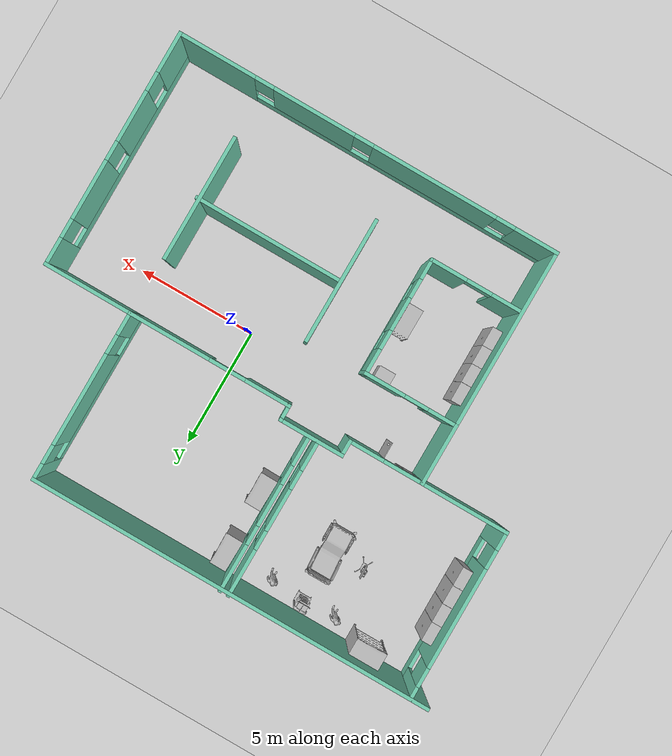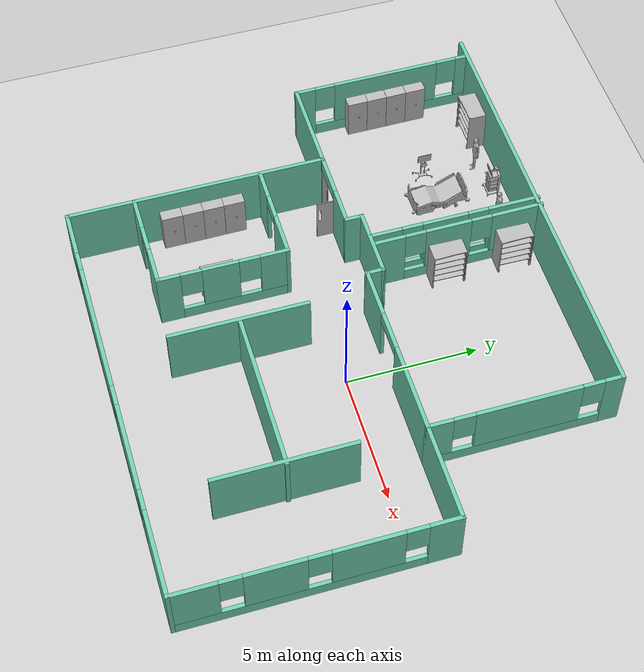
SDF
<sdf version="1.6">
 <world name="default">
  <model name="ground_plane">
   <static>1</static>
   <link name="link">
    <collision name="collision">
     <geometry><plane><normal>0 0 1</normal><size>100 100</size></plane></geometry>
     <surface><friction><ode><mu>100</mu><mu2>50</mu2></ode></friction></surface>
    </collision>
    <visual name="visual">
     <cast_shadows>0</cast_shadows>
     <geometry><plane><normal>0 0 1</normal><size>100 100</size></plane></geometry>
     <material>
      <script><uri>file://media/materials/scripts/gazebo.material</uri><name>Gazebo/Grey</name></script>
     </material>
    </visual>
   </link>
  </model>
  <model name="OperationRooms">
   <pose>-2.55409 0.269218 0 0 -0 0</pose>
   <link name="Wall_0">
    <collision name="Wall_0_Collision">
     <geometry><box><size>17 0.15 2.5</size></box></geometry>
     <pose>0 0 1.25 0 -0 0</pose>
    </collision>
    <visual name="Wall_0_Visual">
     <pose>0 0 1.25 0 -0 0</pose>
     <geometry><box><size>17 0.15 2.5</size></box></geometry>
     <material>
      <script><uri>file://media/materials/scripts/gazebo.material</uri><name>Gazebo/Grey</name></script>
      <ambient>0.435294 0.796078 0.67451 1</ambient>
     </material>
     <meta><layer>0</layer></meta>
    </visual>
    <pose>-1.8 8.44293 0 0 -0 0</pose>
   </link>
   <link name="Wall_1">
    <pose>6.625 4.89293 0 0 0 -1.5708</pose>
    <visual name="Wall_1_Visual_0">
     <pose>-3.25301 0 1.25 0 -0 0</pose>
     <geometry><box><size>0.743979 0.15 2.5</size></box></geometry>
     <material>
      <script><uri>file://media/materials/scripts/gazebo.material</uri><name>Gazebo/Grey</name></script>
      <ambient>0.435294 0.796078 0.67451 1</ambient>
     </material>
     <meta><layer>0</layer></meta>
    </visual>
    <collision name="Wall_1_Collision_0">
     <geometry><box><size>0.743979 0.15 2.5</size></box></geometry>
     <pose>-3.25301 0 1.25 0 -0 0</pose>
    </collision>
    <visual name="Wall_1_Visual_1">
     <pose>0.371989 0 0.25 0 -0 0</pose>
     <geometry><box><size>6.50602 0.15 0.5</size></box></geometry>
     <material>
      <script><uri>file://media/materials/scripts/gazebo.material</uri><name>Gazebo/Grey</name></script>
      <ambient>0.435294 0.796078 0.67451 1</ambient>
     </material>
     <meta><layer>0</layer></meta>
    </visual>
    <collision name="Wall_1_Collision_1">
     <geometry><box><size>6.50602 0.15 0.5</size></box></geometry>
     <pose>0.371989 0 0.25 0 -0 0</pose>
    </collision>
    <visual name="Wall_1_Visual_2">
     <pose>-0.131861 0 1.5 0 -0 0</pose>
     <geometry><box><size>3.89832 0.15 2</size></box></geometry>
     <material>
      <script><uri>file://media/materials/scripts/gazebo.material</uri><name>Gazebo/Grey</name></script>
      <ambient>0.435294 0.796078 0.67451 1</ambient>
     </material>
     <meta><layer>0</layer></meta>
    </visual>
    <collision name="Wall_1_Collision_2">
     <geometry><box><size>3.89832 0.15 2</size></box></geometry>
     <pose>-0.131861 0 1.5 0 -0 0</pose>
    </collision>
    <visual name="Wall_1_Visual_3">
     <pose>3.12115 0 1.5 0 -0 0</pose>
     <geometry><box><size>1.0077 0.15 2</size></box></geometry>
     <material>
      <script><uri>file://media/materials/scripts/gazebo.material</uri><name>Gazebo/Grey</name></script>
      <ambient>0.435294 0.796078 0.67451 1</ambient>
     </material>
     <meta><layer>0</layer></meta>
    </visual>
    <collision name="Wall_1_Collision_3">
     <geometry><box><size>1.0077 0.15 2</size></box></geometry>
     <pose>3.12115 0 1.5 0 -0 0</pose>
    </collision>
    <visual name="Wall_1_Visual_4">
     <pose>-2.48102 0 1.9 0 -0 0</pose>
     <geometry><box><size>0.8 0.15 1.2</size></box></geometry>
     <material>
      <script><uri>file://media/materials/scripts/gazebo.material</uri><name>Gazebo/Grey</name></script>
      <ambient>0.435294 0.796078 0.67451 1</ambient>
     </material>
     <meta><layer>0</layer></meta>
    </visual>
    <collision name="Wall_1_Collision_4">
     <geometry><box><size>0.8 0.15 1.2</size></box></geometry>
     <pose>-2.48102 0 1.9 0 -0 0</pose>
    </collision>
    <visual name="Wall_1_Visual_5">
     <pose>2.2173 0 1.9 0 -0 0</pose>
     <geometry><box><size>0.8 0.15 1.2</size></box></geometry>
     <material>
      <script><uri>file://media/materials/scripts/gazebo.material</uri><name>Gazebo/Grey</name></script>
      <ambient>0.435294 0.796078 0.67451 1</ambient>
     </material>
     <meta><layer>0</layer></meta>
    </visual>
    <collision name="Wall_1_Collision_5">
     <geometry><box><size>0.8 0.15 1.2</size></box></geometry>
     <pose>2.2173 0 1.9 0 -0 0</pose>
    </collision>
   </link>
   <link name="Wall_10">
    <collision name="Wall_10_Collision">
     <geometry><box><size>0.75 0.15 2.5</size></box></geometry>
     <pose>0 0 1.25 0 -0 0</pose>
    </collision>
    <visual name="Wall_10_Visual">
     <pose>0 0 1.25 0 -0 0</pose>
     <geometry><box><size>0.75 0.15 2.5</size></box></geometry>
     <material>
      <script><uri>file://media/materials/scripts/gazebo.material</uri><name>Gazebo/Grey</name></script>
      <ambient>0.435294 0.796078 0.67451 1</ambient>
     </material>
     <meta><layer>0</layer></meta>
    </visual>
    <pose>-2.775 1.64293 0 0 -0 1.5708</pose>
   </link>
   <link name="Wall_11">
    <collision name="Wall_11_Collision">
     <geometry><box><size>2.75 0.15 2.5</size></box></geometry>
     <pose>0 0 1.25 0 -0 0</pose>
    </collision>
    <visual name="Wall_11_Visual">
     <pose>0 0 1.25 0 -0 0</pose>
     <geometry><box><size>2.75 0.15 2.5</size></box></geometry>
     <material>
      <script><uri>file://media/materials/scripts/gazebo.material</uri><name>Gazebo/Grey</name></script>
      <ambient>0.435294 0.796078 0.67451 1</ambient>
     </material>
     <meta><layer>0</layer></meta>
    </visual>
    <pose>-1.475 1.94293 0 0 -0 0</pose>
   </link>
   <link name="Wall_12">
    <collision name="Wall_12_Collision">
     <geometry><box><size>0.75 0.15 2.5</size></box></geometry>
     <pose>0 0 1.25 0 -0 0</pose>
    </collision>
    <visual name="Wall_12_Visual">
     <pose>0 0 1.25 0 -0 0</pose>
     <geometry><box><size>0.75 0.15 2.5</size></box></geometry>
     <material>
      <script><uri>file://media/materials/scripts/gazebo.material</uri><name>Gazebo/Grey</name></script>
      <ambient>0.435294 0.796078 0.67451 1</ambient>
     </material>
     <meta><layer>0</layer></meta>
    </visual>
    <pose>-0.175001 1.64293 0 0 0 -1.5708</pose>
   </link>
   <link name="Wall_13">
    <pose>3.225 1.34293 0 0 -0 0</pose>
    <visual name="Wall_13_Visual_0">
     <pose>-2.49826 0 1.25 0 -0 0</pose>
     <geometry><box><size>1.95347 0.15 2.5</size></box></geometry>
     <material>
      <script><uri>file://media/materials/scripts/gazebo.material</uri><name>Gazebo/Grey</name></script>
      <ambient>0.435294 0.796078 0.67451 1</ambient>
     </material>
     <meta><layer>0</layer></meta>
    </visual>
    <collision name="Wall_13_Collision_0">
     <geometry><box><size>1.95347 0.15 2.5</size></box></geometry>
     <pose>-2.49826 0 1.25 0 -0 0</pose>
    </collision>
    <visual name="Wall_13_Visual_1">
     <pose>1.74383 0 1.25 0 -0 0</pose>
     <geometry><box><size>3.46234 0.15 2.5</size></box></geometry>
     <material>
      <script><uri>file://media/materials/scripts/gazebo.material</uri><name>Gazebo/Grey</name></script>
      <ambient>0.435294 0.796078 0.67451 1</ambient>
     </material>
     <meta><layer>0</layer></meta>
    </visual>
    <collision name="Wall_13_Collision_1">
     <geometry><box><size>3.46234 0.15 2.5</size></box></geometry>
     <pose>1.74383 0 1.25 0 -0 0</pose>
    </collision>
    <visual name="Wall_13_Visual_2">
     <pose>-0.754435 0 2.25 0 -0 0</pose>
     <geometry><box><size>1.53419 0.15 0.5</size></box></geometry>
     <material>
      <script><uri>file://media/materials/scripts/gazebo.material</uri><name>Gazebo/Grey</name></script>
      <ambient>0.435294 0.796078 0.67451 1</ambient>
     </material>
     <meta><layer>0</layer></meta>
    </visual>
    <collision name="Wall_13_Collision_2">
     <geometry><box><size>1.53419 0.15 0.5</size></box></geometry>
     <pose>-0.754435 0 2.25 0 -0 0</pose>
    </collision>
   </link>
   <link name="Wall_15">
    <pose>-1.76297 5.22819 0 0 0 -1.57073</pose>
    <visual name="Wall_15_Visual_0">
     <pose>-2.34224 0 1.25 0 -0 0</pose>
     <geometry><box><size>2.02274 0.15 2.5</size></box></geometry>
     <material>
      <script><uri>file://media/materials/scripts/gazebo.material</uri><name>Gazebo/Grey</name></script>
      <ambient>0.435294 0.796078 0.67451 1</ambient>
     </material>
     <meta><layer>0</layer></meta>
    </visual>
    <collision name="Wall_15_Collision_0">
     <geometry><box><size>2.02274 0.15 2.5</size></box></geometry>
     <pose>-2.34224 0 1.25 0 -0 0</pose>
    </collision>
    <visual name="Wall_15_Visual_1">
     <pose>1.01137 0 0.25 0 -0 0</pose>
     <geometry><box><size>4.68447 0.15 0.5</size></box></geometry>
     <material>
      <script><uri>file://media/materials/scripts/gazebo.material</uri><name>Gazebo/Grey</name></script>
      <ambient>0.435294 0.796078 0.67451 1</ambient>
     </material>
     <meta><layer>0</layer></meta>
    </visual>
    <collision name="Wall_15_Collision_1">
     <geometry><box><size>4.68447 0.15 0.5</size></box></geometry>
     <pose>1.01137 0 0.25 0 -0 0</pose>
    </collision>
    <visual name="Wall_15_Visual_2">
     <pose>0.358356 0 1.5 0 -0 0</pose>
     <geometry><box><size>1.77844 0.15 2</size></box></geometry>
     <material>
      <script><uri>file://media/materials/scripts/gazebo.material</uri><name>Gazebo/Grey</name></script>
      <ambient>0.435294 0.796078 0.67451 1</ambient>
     </material>
     <meta><layer>0</layer></meta>
    </visual>
    <collision name="Wall_15_Collision_2">
     <geometry><box><size>1.77844 0.15 2</size></box></geometry>
     <pose>0.358356 0 1.5 0 -0 0</pose>
    </collision>
    <visual name="Wall_15_Visual_3">
     <pose>2.70059 0 1.5 0 -0 0</pose>
     <geometry><box><size>1.30603 0.15 2</size></box></geometry>
     <material>
      <script><uri>file://media/materials/scripts/gazebo.material</uri><name>Gazebo/Grey</name></script>
      <ambient>0.435294 0.796078 0.67451 1</ambient>
     </material>
     <meta><layer>0</layer></meta>
    </visual>
    <collision name="Wall_15_Collision_3">
     <geometry><box><size>1.30603 0.15 2</size></box></geometry>
     <pose>2.70059 0 1.5 0 -0 0</pose>
    </collision>
    <visual name="Wall_15_Visual_4">
     <pose>-0.930863 0 1.9 0 -0 0</pose>
     <geometry><box><size>0.8 0.15 1.2</size></box></geometry>
     <material>
      <script><uri>file://media/materials/scripts/gazebo.material</uri><name>Gazebo/Grey</name></script>
      <ambient>0.435294 0.796078 0.67451 1</ambient>
     </material>
     <meta><layer>0</layer></meta>
    </visual>
    <collision name="Wall_15_Collision_4">
     <geometry><box><size>0.8 0.15 1.2</size></box></geometry>
     <pose>-0.930863 0 1.9 0 -0 0</pose>
    </collision>
    <visual name="Wall_15_Visual_5">
     <pose>1.64758 0 1.9 0 -0 0</pose>
     <geometry><box><size>0.8 0.15 1.2</size></box></geometry>
     <material>
      <script><uri>file://media/materials/scripts/gazebo.material</uri><name>Gazebo/Grey</name></script>
      <ambient>0.435294 0.796078 0.67451 1</ambient>
     </material>
     <meta><layer>0</layer></meta>
    </visual>
    <collision name="Wall_15_Collision_5">
     <geometry><box><size>0.8 0.15 1.2</size></box></geometry>
     <pose>1.64758 0 1.9 0 -0 0</pose>
    </collision>
   </link>
   <link name="Wall_17">
    <pose>-1.40119 5.232 0 0 -0 1.57446</pose>
    <visual name="Wall_17_Visual_0">
     <pose>-2.69774 0 1.25 0 -0 0</pose>
     <geometry><box><size>1.30415 0.15 2.5</size></box></geometry>
     <material>
      <script><uri>file://media/materials/scripts/gazebo.material</uri><name>Gazebo/Grey</name></script>
      <ambient>0.435294 0.796078 0.67451 1</ambient>
     </material>
     <meta><layer>0</layer></meta>
    </visual>
    <collision name="Wall_17_Collision_0">
     <geometry><box><size>1.30415 0.15 2.5</size></box></geometry>
     <pose>-2.69774 0 1.25 0 -0 0</pose>
    </collision>
    <visual name="Wall_17_Visual_1">
     <pose>0.652073 0 0.25 0 -0 0</pose>
     <geometry><box><size>5.39549 0.15 0.5</size></box></geometry>
     <material>
      <script><uri>file://media/materials/scripts/gazebo.material</uri><name>Gazebo/Grey</name></script>
      <ambient>0.435294 0.796078 0.67451 1</ambient>
     </material>
     <meta><layer>0</layer></meta>
    </visual>
    <collision name="Wall_17_Collision_1">
     <geometry><box><size>5.39549 0.15 0.5</size></box></geometry>
     <pose>0.652073 0 0.25 0 -0 0</pose>
    </collision>
    <visual name="Wall_17_Visual_2">
     <pose>-0.357942 0 1.5 0 -0 0</pose>
     <geometry><box><size>1.77546 0.15 2</size></box></geometry>
     <material>
      <script><uri>file://media/materials/scripts/gazebo.material</uri><name>Gazebo/Grey</name></script>
      <ambient>0.435294 0.796078 0.67451 1</ambient>
     </material>
     <meta><layer>0</layer></meta>
    </visual>
    <collision name="Wall_17_Collision_2">
     <geometry><box><size>1.77546 0.15 2</size></box></geometry>
     <pose>-0.357942 0 1.5 0 -0 0</pose>
    </collision>
    <visual name="Wall_17_Visual_3">
     <pose>2.3398 0 1.5 0 -0 0</pose>
     <geometry><box><size>2.02003 0.15 2</size></box></geometry>
     <material>
      <script><uri>file://media/materials/scripts/gazebo.material</uri><name>Gazebo/Grey</name></script>
      <ambient>0.435294 0.796078 0.67451 1</ambient>
     </material>
     <meta><layer>0</layer></meta>
    </visual>
    <collision name="Wall_17_Collision_3">
     <geometry><box><size>2.02003 0.15 2</size></box></geometry>
     <pose>2.3398 0 1.5 0 -0 0</pose>
    </collision>
    <visual name="Wall_17_Visual_4">
     <pose>-1.64567 0 1.9 0 -0 0</pose>
     <geometry><box><size>0.8 0.15 1.2</size></box></geometry>
     <material>
      <script><uri>file://media/materials/scripts/gazebo.material</uri><name>Gazebo/Grey</name></script>
      <ambient>0.435294 0.796078 0.67451 1</ambient>
     </material>
     <meta><layer>0</layer></meta>
    </visual>
    <collision name="Wall_17_Collision_4">
     <geometry><box><size>0.8 0.15 1.2</size></box></geometry>
     <pose>-1.64567 0 1.9 0 -0 0</pose>
    </collision>
    <visual name="Wall_17_Visual_5">
     <pose>0.929787 0 1.9 0 -0 0</pose>
     <geometry><box><size>0.8 0.15 1.2</size></box></geometry>
     <material>
      <script><uri>file://media/materials/scripts/gazebo.material</uri><name>Gazebo/Grey</name></script>
      <ambient>0.435294 0.796078 0.67451 1</ambient>
     </material>
     <meta><layer>0</layer></meta>
    </visual>
    <collision name="Wall_17_Collision_5">
     <geometry><box><size>0.8 0.15 1.2</size></box></geometry>
     <pose>0.929787 0 1.9 0 -0 0</pose>
    </collision>
   </link>
   <link name="Wall_19">
    <pose>-3.948 -5.97007 0 0 -0 0</pose>
    <visual name="Wall_19_Visual_0">
     <pose>-1.31524 0 1.25 0 -0 0</pose>
     <geometry><box><size>1.36952 0.15 2.5</size></box></geometry>
     <material>
      <script><uri>file://media/materials/scripts/gazebo.material</uri><name>Gazebo/Grey</name></script>
      <ambient>0.435294 0.796078 0.67451 1</ambient>
     </material>
     <meta><layer>0</layer></meta>
    </visual>
    <collision name="Wall_19_Collision_0">
     <geometry><box><size>1.36952 0.15 2.5</size></box></geometry>
     <pose>-1.31524 0 1.25 0 -0 0</pose>
    </collision>
    <visual name="Wall_19_Visual_1">
     <pose>1.21794 0 1.25 0 -0 0</pose>
     <geometry><box><size>1.56413 0.15 2.5</size></box></geometry>
     <material>
      <script><uri>file://media/materials/scripts/gazebo.material</uri><name>Gazebo/Grey</name></script>
      <ambient>0.435294 0.796078 0.67451 1</ambient>
     </material>
     <meta><layer>0</layer></meta>
    </visual>
    <collision name="Wall_19_Collision_1">
     <geometry><box><size>1.56413 0.15 2.5</size></box></geometry>
     <pose>1.21794 0 1.25 0 -0 0</pose>
    </collision>
    <visual name="Wall_19_Visual_2">
     <pose>-0.097301 0 2.25 0 -0 0</pose>
     <geometry><box><size>1.06635 0.15 0.5</size></box></geometry>
     <material>
      <script><uri>file://media/materials/scripts/gazebo.material</uri><name>Gazebo/Grey</name></script>
      <ambient>0.435294 0.796078 0.67451 1</ambient>
     </material>
     <meta><layer>0</layer></meta>
    </visual>
    <collision name="Wall_19_Collision_2">
     <geometry><box><size>1.06635 0.15 0.5</size></box></geometry>
     <pose>-0.097301 0 2.25 0 -0 0</pose>
    </collision>
   </link>
   <link name="Wall_2">
    <collision name="Wall_2_Collision">
     <geometry><box><size>3.75 0.15 2.5</size></box></geometry>
     <pose>0 0 1.25 0 -0 0</pose>
    </collision>
    <visual name="Wall_2_Visual">
     <pose>0 0 1.25 0 -0 0</pose>
     <geometry><box><size>3.75 0.15 2.5</size></box></geometry>
     <material>
      <script><uri>file://media/materials/scripts/gazebo.material</uri><name>Gazebo/Grey</name></script>
      <ambient>0.435294 0.796078 0.67451 1</ambient>
     </material>
     <meta><layer>0</layer></meta>
    </visual>
    <pose>8.425 1.34293 0 0 -0 0</pose>
   </link>
   <link name="Wall_20">
    <pose>-2.023 -3.54507 0 0 -0 1.5708</pose>
    <visual name="Wall_20_Visual_0">
     <pose>-2.05349 0 1.25 0 -0 0</pose>
     <geometry><box><size>0.89301 0.15 2.5</size></box></geometry>
     <material>
      <script><uri>file://media/materials/scripts/gazebo.material</uri><name>Gazebo/Grey</name></script>
      <ambient>0.435294 0.796078 0.67451 1</ambient>
     </material>
     <meta><layer>0</layer></meta>
    </visual>
    <collision name="Wall_20_Collision_0">
     <geometry><box><size>0.89301 0.15 2.5</size></box></geometry>
     <pose>-2.05349 0 1.25 0 -0 0</pose>
    </collision>
    <visual name="Wall_20_Visual_1">
     <pose>0.446505 0 0.25 0 -0 0</pose>
     <geometry><box><size>4.10699 0.15 0.5</size></box></geometry>
     <material>
      <script><uri>file://media/materials/scripts/gazebo.material</uri><name>Gazebo/Grey</name></script>
      <ambient>0.435294 0.796078 0.67451 1</ambient>
     </material>
     <meta><layer>0</layer></meta>
    </visual>
    <collision name="Wall_20_Collision_1">
     <geometry><box><size>4.10699 0.15 0.5</size></box></geometry>
     <pose>0.446505 0 0.25 0 -0 0</pose>
    </collision>
    <visual name="Wall_20_Visual_2">
     <pose>-0.110715 0 1.5 0 -0 0</pose>
     <geometry><box><size>1.39255 0.15 2</size></box></geometry>
     <material>
      <script><uri>file://media/materials/scripts/gazebo.material</uri><name>Gazebo/Grey</name></script>
      <ambient>0.435294 0.796078 0.67451 1</ambient>
     </material>
     <meta><layer>0</layer></meta>
    </visual>
    <collision name="Wall_20_Collision_2">
     <geometry><box><size>1.39255 0.15 2</size></box></geometry>
     <pose>-0.110715 0 1.5 0 -0 0</pose>
    </collision>
    <visual name="Wall_20_Visual_3">
     <pose>1.94278 0 1.5 0 -0 0</pose>
     <geometry><box><size>1.11444 0.15 2</size></box></geometry>
     <material>
      <script><uri>file://media/materials/scripts/gazebo.material</uri><name>Gazebo/Grey</name></script>
      <ambient>0.435294 0.796078 0.67451 1</ambient>
     </material>
     <meta><layer>0</layer></meta>
    </visual>
    <collision name="Wall_20_Collision_3">
     <geometry><box><size>1.11444 0.15 2</size></box></geometry>
     <pose>1.94278 0 1.5 0 -0 0</pose>
    </collision>
    <visual name="Wall_20_Visual_4">
     <pose>-1.20699 0 1.9 0 -0 0</pose>
     <geometry><box><size>0.8 0.15 1.2</size></box></geometry>
     <material>
      <script><uri>file://media/materials/scripts/gazebo.material</uri><name>Gazebo/Grey</name></script>
      <ambient>0.435294 0.796078 0.67451 1</ambient>
     </material>
     <meta><layer>0</layer></meta>
    </visual>
    <collision name="Wall_20_Collision_4">
     <geometry><box><size>0.8 0.15 1.2</size></box></geometry>
     <pose>-1.20699 0 1.9 0 -0 0</pose>
    </collision>
    <visual name="Wall_20_Visual_5">
     <pose>0.98556 0 1.9 0 -0 0</pose>
     <geometry><box><size>0.8 0.15 1.2</size></box></geometry>
     <material>
      <script><uri>file://media/materials/scripts/gazebo.material</uri><name>Gazebo/Grey</name></script>
      <ambient>0.435294 0.796078 0.67451 1</ambient>
     </material>
     <meta><layer>0</layer></meta>
    </visual>
    <collision name="Wall_20_Collision_5">
     <geometry><box><size>0.8 0.15 1.2</size></box></geometry>
     <pose>0.98556 0 1.9 0 -0 0</pose>
    </collision>
   </link>
   <link name="Wall_21">
    <pose>-3.948 -1.12007 0 0 -0 3.14159</pose>
    <visual name="Wall_21_Visual_0">
     <pose>-1.13166 0 1.25 0 -0 0</pose>
     <geometry><box><size>1.73669 0.15 2.5</size></box></geometry>
     <material>
      <script><uri>file://media/materials/scripts/gazebo.material</uri><name>Gazebo/Grey</name></script>
      <ambient>0.435294 0.796078 0.67451 1</ambient>
     </material>
     <meta><layer>0</layer></meta>
    </visual>
    <collision name="Wall_21_Collision_0">
     <geometry><box><size>1.73669 0.15 2.5</size></box></geometry>
     <pose>-1.13166 0 1.25 0 -0 0</pose>
    </collision>
    <visual name="Wall_21_Visual_1">
     <pose>1.36806 0 1.25 0 -0 0</pose>
     <geometry><box><size>1.26388 0.15 2.5</size></box></geometry>
     <material>
      <script><uri>file://media/materials/scripts/gazebo.material</uri><name>Gazebo/Grey</name></script>
      <ambient>0.435294 0.796078 0.67451 1</ambient>
     </material>
     <meta><layer>0</layer></meta>
    </visual>
    <collision name="Wall_21_Collision_1">
     <geometry><box><size>1.26388 0.15 2.5</size></box></geometry>
     <pose>1.36806 0 1.25 0 -0 0</pose>
    </collision>
    <visual name="Wall_21_Visual_2">
     <pose>0.236406 0 2.25 0 -0 0</pose>
     <geometry><box><size>0.999435 0.15 0.5</size></box></geometry>
     <material>
      <script><uri>file://media/materials/scripts/gazebo.material</uri><name>Gazebo/Grey</name></script>
      <ambient>0.435294 0.796078 0.67451 1</ambient>
     </material>
     <meta><layer>0</layer></meta>
    </visual>
    <collision name="Wall_21_Collision_2">
     <geometry><box><size>0.999435 0.15 0.5</size></box></geometry>
     <pose>0.236406 0 2.25 0 -0 0</pose>
    </collision>
   </link>
   <link name="Wall_23">
    <collision name="Wall_23_Collision">
     <geometry><box><size>5.25 0.15 2.5</size></box></geometry>
     <pose>0 0 1.25 0 -0 0</pose>
    </collision>
    <visual name="Wall_23_Visual">
     <pose>0 0 1.25 0 -0 0</pose>
     <geometry><box><size>5.25 0.15 2.5</size></box></geometry>
     <material>
      <script><uri>file://media/materials/scripts/gazebo.material</uri><name>Gazebo/Grey</name></script>
      <ambient>0.435294 0.796078 0.67451 1</ambient>
     </material>
     <meta><layer>0</layer></meta>
    </visual>
    <pose>0.489999 -3.62007 0 0 0 -1.5708</pose>
   </link>
   <link name="Wall_25">
    <collision name="Wall_25_Collision">
     <geometry><box><size>5.25 0.15 2.5</size></box></geometry>
     <pose>0 0 1.25 0 -0 0</pose>
    </collision>
    <visual name="Wall_25_Visual">
     <pose>0 0 1.25 0 -0 0</pose>
     <geometry><box><size>5.25 0.15 2.5</size></box></geometry>
     <material>
      <script><uri>file://media/materials/scripts/gazebo.material</uri><name>Gazebo/Grey</name></script>
      <ambient>0.435294 0.796078 0.67451 1</ambient>
     </material>
     <meta><layer>0</layer></meta>
    </visual>
    <pose>6.547 -3.62007 0 0 0 -1.5708</pose>
   </link>
   <link name="Wall_27">
    <collision name="Wall_27_Collision">
     <geometry><box><size>6.25 0.15 2.5</size></box></geometry>
     <pose>0 0 1.25 0 -0 0</pose>
    </collision>
    <visual name="Wall_27_Visual">
     <pose>0 0 1.25 0 -0 0</pose>
     <geometry><box><size>6.25 0.15 2.5</size></box></geometry>
     <material>
      <script><uri>file://media/materials/scripts/gazebo.material</uri><name>Gazebo/Grey</name></script>
      <ambient>0.435294 0.796078 0.67451 1</ambient>
     </material>
     <meta><layer>0</layer></meta>
    </visual>
    <pose>3.574 -3.58807 0 0 -0 0</pose>
   </link>
   <link name="Wall_3">
    <pose>10.225 -3.58207 0 0 0 -1.5708</pose>
    <visual name="Wall_3_Visual_0">
     <pose>-4.39698 0 1.25 0 -0 0</pose>
     <geometry><box><size>1.20604 0.15 2.5</size></box></geometry>
     <material>
      <script><uri>file://media/materials/scripts/gazebo.material</uri><name>Gazebo/Grey</name></script>
      <ambient>0.435294 0.796078 0.67451 1</ambient>
     </material>
     <meta><layer>0</layer></meta>
    </visual>
    <collision name="Wall_3_Collision_0">
     <geometry><box><size>1.20604 0.15 2.5</size></box></geometry>
     <pose>-4.39698 0 1.25 0 -0 0</pose>
    </collision>
    <visual name="Wall_3_Visual_1">
     <pose>0.603019 0 0.25 0 -0 0</pose>
     <geometry><box><size>8.79396 0.15 0.5</size></box></geometry>
     <material>
      <script><uri>file://media/materials/scripts/gazebo.material</uri><name>Gazebo/Grey</name></script>
      <ambient>0.435294 0.796078 0.67451 1</ambient>
     </material>
     <meta><layer>0</layer></meta>
    </visual>
    <collision name="Wall_3_Collision_1">
     <geometry><box><size>8.79396 0.15 0.5</size></box></geometry>
     <pose>0.603019 0 0.25 0 -0 0</pose>
    </collision>
    <visual name="Wall_3_Visual_2">
     <pose>-1.73836 0 1.5 0 -0 0</pose>
     <geometry><box><size>2.5112 0.15 2</size></box></geometry>
     <material>
      <script><uri>file://media/materials/scripts/gazebo.material</uri><name>Gazebo/Grey</name></script>
      <ambient>0.435294 0.796078 0.67451 1</ambient>
     </material>
     <meta><layer>0</layer></meta>
    </visual>
    <collision name="Wall_3_Collision_2">
     <geometry><box><size>2.5112 0.15 2</size></box></geometry>
     <pose>-1.73836 0 1.5 0 -0 0</pose>
    </collision>
    <visual name="Wall_3_Visual_3">
     <pose>1.39385 0 1.5 0 -0 0</pose>
     <geometry><box><size>2.15323 0.15 2</size></box></geometry>
     <material>
      <script><uri>file://media/materials/scripts/gazebo.material</uri><name>Gazebo/Grey</name></script>
      <ambient>0.435294 0.796078 0.67451 1</ambient>
     </material>
     <meta><layer>0</layer></meta>
    </visual>
    <collision name="Wall_3_Collision_3">
     <geometry><box><size>2.15323 0.15 2</size></box></geometry>
     <pose>1.39385 0 1.5 0 -0 0</pose>
    </collision>
    <visual name="Wall_3_Visual_4">
     <pose>4.13523 0 1.5 0 -0 0</pose>
     <geometry><box><size>1.72954 0.15 2</size></box></geometry>
     <material>
      <script><uri>file://media/materials/scripts/gazebo.material</uri><name>Gazebo/Grey</name></script>
      <ambient>0.435294 0.796078 0.67451 1</ambient>
     </material>
     <meta><layer>0</layer></meta>
    </visual>
    <collision name="Wall_3_Collision_4">
     <geometry><box><size>1.72954 0.15 2</size></box></geometry>
     <pose>4.13523 0 1.5 0 -0 0</pose>
    </collision>
    <visual name="Wall_3_Visual_5">
     <pose>-3.39396 0 1.9 0 -0 0</pose>
     <geometry><box><size>0.8 0.15 1.2</size></box></geometry>
     <material>
      <script><uri>file://media/materials/scripts/gazebo.material</uri><name>Gazebo/Grey</name></script>
      <ambient>0.435294 0.796078 0.67451 1</ambient>
     </material>
     <meta><layer>0</layer></meta>
    </visual>
    <collision name="Wall_3_Collision_5">
     <geometry><box><size>0.8 0.15 1.2</size></box></geometry>
     <pose>-3.39396 0 1.9 0 -0 0</pose>
    </collision>
    <visual name="Wall_3_Visual_6">
     <pose>-0.082766 0 1.9 0 -0 0</pose>
     <geometry><box><size>0.8 0.15 1.2</size></box></geometry>
     <material>
      <script><uri>file://media/materials/scripts/gazebo.material</uri><name>Gazebo/Grey</name></script>
      <ambient>0.435294 0.796078 0.67451 1</ambient>
     </material>
     <meta><layer>0</layer></meta>
    </visual>
    <collision name="Wall_3_Collision_6">
     <geometry><box><size>0.8 0.15 1.2</size></box></geometry>
     <pose>-0.082766 0 1.9 0 -0 0</pose>
    </collision>
    <visual name="Wall_3_Visual_7">
     <pose>2.87046 0 1.9 0 -0 0</pose>
     <geometry><box><size>0.8 0.15 1.2</size></box></geometry>
     <material>
      <script><uri>file://media/materials/scripts/gazebo.material</uri><name>Gazebo/Grey</name></script>
      <ambient>0.435294 0.796078 0.67451 1</ambient>
     </material>
     <meta><layer>0</layer></meta>
    </visual>
    <collision name="Wall_3_Collision_7">
     <geometry><box><size>0.8 0.15 1.2</size></box></geometry>
     <pose>2.87046 0 1.9 0 -0 0</pose>
    </collision>
   </link>
   <link name="Wall_4">
    <pose>2.175 -8.50707 0 0 -0 3.14159</pose>
    <visual name="Wall_4_Visual_0">
     <pose>-6.47778 0 1.25 0 -0 0</pose>
     <geometry><box><size>3.29443 0.15 2.5</size></box></geometry>
     <material>
      <script><uri>file://media/materials/scripts/gazebo.material</uri><name>Gazebo/Grey</name></script>
      <ambient>0.435294 0.796078 0.67451 1</ambient>
     </material>
     <meta><layer>0</layer></meta>
    </visual>
    <collision name="Wall_4_Collision_0">
     <geometry><box><size>3.29443 0.15 2.5</size></box></geometry>
     <pose>-6.47778 0 1.25 0 -0 0</pose>
    </collision>
    <visual name="Wall_4_Visual_1">
     <pose>1.64722 0 0.25 0 -0 0</pose>
     <geometry><box><size>12.9556 0.15 0.5</size></box></geometry>
     <material>
      <script><uri>file://media/materials/scripts/gazebo.material</uri><name>Gazebo/Grey</name></script>
      <ambient>0.435294 0.796078 0.67451 1</ambient>
     </material>
     <meta><layer>0</layer></meta>
    </visual>
    <collision name="Wall_4_Collision_1">
     <geometry><box><size>12.9556 0.15 0.5</size></box></geometry>
     <pose>1.64722 0 0.25 0 -0 0</pose>
    </collision>
    <visual name="Wall_4_Visual_2">
     <pose>-2.30514 0 1.5 0 -0 0</pose>
     <geometry><box><size>3.45086 0.15 2</size></box></geometry>
     <material>
      <script><uri>file://media/materials/scripts/gazebo.material</uri><name>Gazebo/Grey</name></script>
      <ambient>0.435294 0.796078 0.67451 1</ambient>
     </material>
     <meta><layer>0</layer></meta>
    </visual>
    <collision name="Wall_4_Collision_2">
     <geometry><box><size>3.45086 0.15 2</size></box></geometry>
     <pose>-2.30514 0 1.5 0 -0 0</pose>
    </collision>
    <visual name="Wall_4_Visual_3">
     <pose>2.84064 0 1.5 0 -0 0</pose>
     <geometry><box><size>5.2407 0.15 2</size></box></geometry>
     <material>
      <script><uri>file://media/materials/scripts/gazebo.material</uri><name>Gazebo/Grey</name></script>
      <ambient>0.435294 0.796078 0.67451 1</ambient>
     </material>
     <meta><layer>0</layer></meta>
    </visual>
    <collision name="Wall_4_Collision_3">
     <geometry><box><size>5.2407 0.15 2</size></box></geometry>
     <pose>2.84064 0 1.5 0 -0 0</pose>
    </collision>
    <visual name="Wall_4_Visual_4">
     <pose>7.19299 0 1.5 0 -0 0</pose>
     <geometry><box><size>1.86401 0.15 2</size></box></geometry>
     <material>
      <script><uri>file://media/materials/scripts/gazebo.material</uri><name>Gazebo/Grey</name></script>
      <ambient>0.435294 0.796078 0.67451 1</ambient>
     </material>
     <meta><layer>0</layer></meta>
    </visual>
    <collision name="Wall_4_Collision_4">
     <geometry><box><size>1.86401 0.15 2</size></box></geometry>
     <pose>7.19299 0 1.5 0 -0 0</pose>
    </collision>
    <visual name="Wall_4_Visual_5">
     <pose>-4.43057 0 1.9 0 -0 0</pose>
     <geometry><box><size>0.8 0.15 1.2</size></box></geometry>
     <material>
      <script><uri>file://media/materials/scripts/gazebo.material</uri><name>Gazebo/Grey</name></script>
      <ambient>0.435294 0.796078 0.67451 1</ambient>
     </material>
     <meta><layer>0</layer></meta>
    </visual>
    <collision name="Wall_4_Collision_5">
     <geometry><box><size>0.8 0.15 1.2</size></box></geometry>
     <pose>-4.43057 0 1.9 0 -0 0</pose>
    </collision>
    <visual name="Wall_4_Visual_6">
     <pose>-0.179707 0 1.9 0 -0 0</pose>
     <geometry><box><size>0.8 0.15 1.2</size></box></geometry>
     <material>
      <script><uri>file://media/materials/scripts/gazebo.material</uri><name>Gazebo/Grey</name></script>
      <ambient>0.435294 0.796078 0.67451 1</ambient>
     </material>
     <meta><layer>0</layer></meta>
    </visual>
    <collision name="Wall_4_Collision_6">
     <geometry><box><size>0.8 0.15 1.2</size></box></geometry>
     <pose>-0.179707 0 1.9 0 -0 0</pose>
    </collision>
    <visual name="Wall_4_Visual_7">
     <pose>5.86099 0 1.9 0 -0 0</pose>
     <geometry><box><size>0.8 0.15 1.2</size></box></geometry>
     <material>
      <script><uri>file://media/materials/scripts/gazebo.material</uri><name>Gazebo/Grey</name></script>
      <ambient>0.435294 0.796078 0.67451 1</ambient>
     </material>
     <meta><layer>0</layer></meta>
    </visual>
    <collision name="Wall_4_Collision_7">
     <geometry><box><size>0.8 0.15 1.2</size></box></geometry>
     <pose>5.86099 0 1.9 0 -0 0</pose>
    </collision>
   </link>
   <link name="Wall_5">
    <collision name="Wall_5_Collision">
     <geometry><box><size>10 0.15 2.5</size></box></geometry>
     <pose>0 0 1.25 0 -0 0</pose>
    </collision>
    <visual name="Wall_5_Visual">
     <pose>0 0 1.25 0 -0 0</pose>
     <geometry><box><size>10 0.15 2.5</size></box></geometry>
     <material>
      <script><uri>file://media/materials/scripts/gazebo.material</uri><name>Gazebo/Grey</name></script>
      <ambient>0.435294 0.796078 0.67451 1</ambient>
     </material>
     <meta><layer>0</layer></meta>
    </visual>
    <pose>-5.875 -3.58207 0 0 -0 1.5708</pose>
   </link>
   <link name="Wall_6">
    <collision name="Wall_6_Collision">
     <geometry><box><size>3.75 0.15 2.5</size></box></geometry>
     <pose>0 0 1.25 0 -0 0</pose>
    </collision>
    <visual name="Wall_6_Visual">
     <pose>0 0 1.25 0 -0 0</pose>
     <geometry><box><size>3.75 0.15 2.5</size></box></geometry>
     <material>
      <script><uri>file://media/materials/scripts/gazebo.material</uri><name>Gazebo/Grey</name></script>
      <ambient>0.435294 0.796078 0.67451 1</ambient>
     </material>
     <meta><layer>0</layer></meta>
    </visual>
    <pose>-7.675 1.34293 0 0 -0 3.14159</pose>
   </link>
   <link name="Wall_7">
    <pose>-9.484 4.88293 0 0 -0 1.57334</pose>
    <visual name="Wall_7_Visual_0">
     <pose>-3.20451 0 1.25 0 -0 0</pose>
     <geometry><box><size>0.821425 0.15 2.5</size></box></geometry>
     <material>
      <script><uri>file://media/materials/scripts/gazebo.material</uri><name>Gazebo/Grey</name></script>
      <ambient>0.435294 0.796078 0.67451 1</ambient>
     </material>
     <meta><layer>0</layer></meta>
    </visual>
    <collision name="Wall_7_Collision_0">
     <geometry><box><size>0.821425 0.15 2.5</size></box></geometry>
     <pose>-3.20451 0 1.25 0 -0 0</pose>
    </collision>
    <visual name="Wall_7_Visual_1">
     <pose>0.410713 0 0.25 0 -0 0</pose>
     <geometry><box><size>6.40903 0.15 0.5</size></box></geometry>
     <material>
      <script><uri>file://media/materials/scripts/gazebo.material</uri><name>Gazebo/Grey</name></script>
      <ambient>0.435294 0.796078 0.67451 1</ambient>
     </material>
     <meta><layer>0</layer></meta>
    </visual>
    <collision name="Wall_7_Collision_1">
     <geometry><box><size>6.40903 0.15 0.5</size></box></geometry>
     <pose>0.410713 0 0.25 0 -0 0</pose>
    </collision>
    <visual name="Wall_7_Visual_2">
     <pose>0.126741 0 1.5 0 -0 0</pose>
     <geometry><box><size>4.24108 0.15 2</size></box></geometry>
     <material>
      <script><uri>file://media/materials/scripts/gazebo.material</uri><name>Gazebo/Grey</name></script>
      <ambient>0.435294 0.796078 0.67451 1</ambient>
     </material>
     <meta><layer>0</layer></meta>
    </visual>
    <collision name="Wall_7_Collision_2">
     <geometry><box><size>4.24108 0.15 2</size></box></geometry>
     <pose>0.126741 0 1.5 0 -0 0</pose>
    </collision>
    <visual name="Wall_7_Visual_3">
     <pose>3.33125 0 1.5 0 -0 0</pose>
     <geometry><box><size>0.567944 0.15 2</size></box></geometry>
     <material>
      <script><uri>file://media/materials/scripts/gazebo.material</uri><name>Gazebo/Grey</name></script>
      <ambient>0.435294 0.796078 0.67451 1</ambient>
     </material>
     <meta><layer>0</layer></meta>
    </visual>
    <collision name="Wall_7_Collision_3">
     <geometry><box><size>0.567944 0.15 2</size></box></geometry>
     <pose>3.33125 0 1.5 0 -0 0</pose>
    </collision>
    <visual name="Wall_7_Visual_4">
     <pose>-2.3938 0 1.9 0 -0 0</pose>
     <geometry><box><size>0.8 0.15 1.2</size></box></geometry>
     <material>
      <script><uri>file://media/materials/scripts/gazebo.material</uri><name>Gazebo/Grey</name></script>
      <ambient>0.435294 0.796078 0.67451 1</ambient>
     </material>
     <meta><layer>0</layer></meta>
    </visual>
    <collision name="Wall_7_Collision_4">
     <geometry><box><size>0.8 0.15 1.2</size></box></geometry>
     <pose>-2.3938 0 1.9 0 -0 0</pose>
    </collision>
    <visual name="Wall_7_Visual_5">
     <pose>2.64728 0 1.9 0 -0 0</pose>
     <geometry><box><size>0.8 0.15 1.2</size></box></geometry>
     <material>
      <script><uri>file://media/materials/scripts/gazebo.material</uri><name>Gazebo/Grey</name></script>
      <ambient>0.435294 0.796078 0.67451 1</ambient>
     </material>
     <meta><layer>0</layer></meta>
    </visual>
    <collision name="Wall_7_Collision_5">
     <geometry><box><size>0.8 0.15 1.2</size></box></geometry>
     <pose>2.64728 0 1.9 0 -0 0</pose>
    </collision>
   </link>
   <link name="Wall_9">
    <pose>-4.325 1.34293 0 0 -0 0</pose>
    <visual name="Wall_9_Visual_0">
     <pose>-1.53274 0 1.25 0 -0 0</pose>
     <geometry><box><size>0.184513 0.15 2.5</size></box></geometry>
     <material>
      <script><uri>file://media/materials/scripts/gazebo.material</uri><name>Gazebo/Grey</name></script>
      <ambient>0.435294 0.796078 0.67451 1</ambient>
     </material>
     <meta><layer>0</layer></meta>
    </visual>
    <collision name="Wall_9_Collision_0">
     <geometry><box><size>0.184513 0.15 2.5</size></box></geometry>
     <pose>-1.53274 0 1.25 0 -0 0</pose>
    </collision>
    <visual name="Wall_9_Visual_1">
     <pose>0.8648 0 1.25 0 -0 0</pose>
     <geometry><box><size>1.5204 0.15 2.5</size></box></geometry>
     <material>
      <script><uri>file://media/materials/scripts/gazebo.material</uri><name>Gazebo/Grey</name></script>
      <ambient>0.435294 0.796078 0.67451 1</ambient>
     </material>
     <meta><layer>0</layer></meta>
    </visual>
    <collision name="Wall_9_Collision_1">
     <geometry><box><size>1.5204 0.15 2.5</size></box></geometry>
     <pose>0.8648 0 1.25 0 -0 0</pose>
    </collision>
    <visual name="Wall_9_Visual_2">
     <pose>-0.667944 0 2.25 0 -0 0</pose>
     <geometry><box><size>1.54509 0.15 0.5</size></box></geometry>
     <material>
      <script><uri>file://media/materials/scripts/gazebo.material</uri><name>Gazebo/Grey</name></script>
      <ambient>0.435294 0.796078 0.67451 1</ambient>
     </material>
     <meta><layer>0</layer></meta>
    </visual>
    <collision name="Wall_9_Collision_2">
     <geometry><box><size>1.54509 0.15 0.5</size></box></geometry>
     <pose>-0.667944 0 2.25 0 -0 0</pose>
    </collision>
   </link>
   <static>1</static>
  </model>
  <model name="OrangeDoors_0">
   <static>1</static>
   <link name="body">
    <visual name="visual">
     <geometry><mesh><uri>model://OrangeDoors/meshes/door.obj</uri></mesh></geometry>
    </visual>
    <collision name="collision">
     <geometry><mesh><uri>model://OrangeDoors/meshes/door.dae</uri></mesh></geometry>
    </collision>
   </link>
   <pose>-7.9368 1.55951 0 0 -0 0</pose>
  </model>
  <model name="OrangeDoors_1">
   <static>1</static>
   <link name="body">
    <visual name="visual">
     <geometry><mesh><uri>model://OrangeDoors/meshes/door.obj</uri></mesh></geometry>
    </visual>
    <collision name="collision">
     <geometry><mesh><uri>model://OrangeDoors/meshes/door.dae</uri></mesh></geometry>
    </collision>
   </link>
   <pose>-6.80187 1.2651 0 0 0 -1.5647</pose>
  </model>
  <model name="CGMClassic">
   <static>1</static>
   <link name="body">
    <visual name="visual">
     <geometry>
      <mesh><uri>model://CGMClassic/meshes/CGMClassic.obj</uri><scale>0.01 0.01 0.01</scale></mesh>
     </geometry>
    </visual>
    <collision name="collision">
     <geometry>
      <mesh><uri>model://CGMClassic/meshes/CGMClassic.dae</uri><scale>0.01 0.01 0.01</scale></mesh>
     </geometry>
    </collision>
   </link>
   <pose>-7.08922 5.90529 0 0 -0 0</pose>
  </model>
  <model name="OpScrubs">
   <static>1</static>
   <link name="body">
    <visual name="visual">
     <geometry><mesh><uri>model://OpScrubs/meshes/OpScrubs.obj</uri></mesh></geometry>
    </visual>
    <collision name="collision">
     <geometry><mesh><uri>model://OpScrubs/meshes/OpScrubs_Col.dae</uri></mesh></geometry>
    </collision>
   </link>
   <pose>-5.58316 7.78552 0 0 -0 0</pose>
  </model>
  <model name="OpScrubs_0">
   <static>1</static>
   <link name="body">
    <visual name="visual">
     <geometry><mesh><uri>model://OpScrubs/meshes/OpScrubs.obj</uri></mesh></geometry>
    </visual>
    <collision name="collision">
     <geometry><mesh><uri>model://OpScrubs/meshes/OpScrubs_Col.dae</uri></mesh></geometry>
    </collision>
   </link>
   <pose>-8.43744 7.8571 0 0 -0 0</pose>
  </model>
  <model name="InstrumentCart1">
   <static>1</static>
   <link name="body">
    <visual name="visual">
     <geometry><mesh><uri>model://InstrumentCart1/meshes/InstrumentCart1.obj</uri></mesh></geometry>
    </visual>
    <collision name="collision">
     <geometry><mesh><uri>model://InstrumentCart1/meshes/InstrumentCart1.dae</uri></mesh></geometry>
    </collision>
   </link>
   <pose>-7.09261 8.12406 0 0 -0 0</pose>
  </model>
  <model name="InstrumentCart2">
   <static>1</static>
   <link name="body">
    <visual name="visual">
     <geometry><mesh><uri>model://InstrumentCart2/meshes/InstrumentCart2.obj</uri></mesh></geometry>
    </visual>
    <collision name="collision">
     <geometry><mesh><uri>model://InstrumentCart2/meshes/InstrumentCart2.dae</uri></mesh></geometry>
    </collision>
   </link>
   <pose>-8.49087 5.76164 0 0 -0 1.57265</pose>
  </model>
  <model name="StorageRackCoverOpen">
   <static>1</static>
   <link name="link">
    <visual name="visual">
     <geometry><mesh><uri>model://StorageRackCoverOpen/meshes/StorageRackCoverOpen.obj</uri></mesh></geometry>
    </visual>
    <collision name="collision">
     <geometry><mesh><uri>model://StorageRackCoverOpen/meshes/StorageRackCoverOpen.dae</uri></mesh></geometry>
    </collision>
   </link>
   <pose>-10.0445 8.25633 0 0 -0 0</pose>
  </model>
  <model name="StorageRackCoverOpen_clone">
   <static>1</static>
   <link name="link">
    <visual name="visual">
     <geometry><mesh><uri>model://StorageRackCoverOpen/meshes/StorageRackCoverOpen.obj</uri></mesh></geometry>
    </visual>
    <collision name="collision">
     <geometry><mesh><uri>model://StorageRackCoverOpen/meshes/StorageRackCoverOpen.dae</uri></mesh></geometry>
    </collision>
   </link>
   <pose>-3.46444 7.62662 0 0 -0 1.5519</pose>
  </model>
  <model name="StorageRackCoverOpen_clone_clone">
   <static>1</static>
   <link name="link">
    <visual name="visual">
     <geometry><mesh><uri>model://StorageRackCoverOpen/meshes/StorageRackCoverOpen.obj</uri></mesh></geometry>
    </visual>
    <collision name="collision">
     <geometry><mesh><uri>model://StorageRackCoverOpen/meshes/StorageRackCoverOpen.dae</uri></mesh></geometry>
    </collision>
   </link>
   <pose>-3.45411 4.99122 0 0 -0 1.5519</pose>
  </model>
  <model name="MetalCabinet">
   <static>1</static>
   <link name="body">
    <visual name="visual">
     <geometry><mesh><uri>model://MetalCabinet/meshes/MetalCabinet.obj</uri></mesh></geometry>
    </visual>
    <collision name="collision">
     <geometry><mesh><uri>model://MetalCabinet/meshes/MetalCabinet.dae</uri></mesh></geometry>
    </collision>
   </link>
   <pose>-11.7332 3.99705 0 0 -0 1.57763</pose>
  </model>
  <model name="MetalCabinet_clone">
   <static>1</static>
   <link name="body">
    <visual name="visual">
     <geometry><mesh><uri>model://MetalCabinet/meshes/MetalCabinet.obj</uri></mesh></geometry>
    </visual>
    <collision name="collision">
     <geometry><mesh><uri>model://MetalCabinet/meshes/MetalCabinet.dae</uri></mesh></geometry>
    </collision>
   </link>
   <pose>-11.7353 4.77919 0 0 -0 1.57763</pose>
  </model>
  <model name="MetalCabinet_clone_0">
   <static>1</static>
   <link name="body">
    <visual name="visual">
     <geometry><mesh><uri>model://MetalCabinet/meshes/MetalCabinet.obj</uri></mesh></geometry>
    </visual>
    <collision name="collision">
     <geometry><mesh><uri>model://MetalCabinet/meshes/MetalCabinet.dae</uri></mesh></geometry>
    </collision>
   </link>
   <pose>-11.74 5.58902 0 0 -0 1.57763</pose>
  </model>
  <model name="MetalCabinet_clone_1">
   <static>1</static>
   <link name="body">
    <visual name="visual">
     <geometry><mesh><uri>model://MetalCabinet/meshes/MetalCabinet.obj</uri></mesh></geometry>
    </visual>
    <collision name="collision">
     <geometry><mesh><uri>model://MetalCabinet/meshes/MetalCabinet.dae</uri></mesh></geometry>
    </collision>
   </link>
   <pose>-11.7445 6.39678 0 0 -0 1.57763</pose>
  </model>
  <model name="MetalCabinet_clone_clone">
   <static>1</static>
   <link name="body">
    <visual name="visual">
     <geometry><mesh><uri>model://MetalCabinet/meshes/MetalCabinet.obj</uri></mesh></geometry>
    </visual>
    <collision name="collision">
     <geometry><mesh><uri>model://MetalCabinet/meshes/MetalCabinet.dae</uri></mesh></geometry>
    </collision>
   </link>
   <pose>-8.11834 -4.43541 0 0 -0 1.57763</pose>
  </model>
  <model name="MetalCabinet_clone_clone_clone">
   <static>1</static>
   <link name="body">
    <visual name="visual">
     <geometry><mesh><uri>model://MetalCabinet/meshes/MetalCabinet.obj</uri></mesh></geometry>
    </visual>
    <collision name="collision">
     <geometry><mesh><uri>model://MetalCabinet/meshes/MetalCabinet.dae</uri></mesh></geometry>
    </collision>
   </link>
   <pose>-8.12089 -3.63387 0 0 -0 1.57763</pose>
  </model>
  <model name="MetalCabinet_clone_clone_clone_0">
   <static>1</static>
   <link name="body">
    <visual name="visual">
     <geometry><mesh><uri>model://MetalCabinet/meshes/MetalCabinet.obj</uri></mesh></geometry>
    </visual>
    <collision name="collision">
     <geometry><mesh><uri>model://MetalCabinet/meshes/MetalCabinet.dae</uri></mesh></geometry>
    </collision>
   </link>
   <pose>-8.12409 -2.83496 0 0 -0 1.57763</pose>
  </model>
  <model name="MetalCabinet_clone_clone_clone_1">
   <static>1</static>
   <link name="body">
    <visual name="visual">
     <geometry><mesh><uri>model://MetalCabinet/meshes/MetalCabinet.obj</uri></mesh></geometry>
    </visual>
    <collision name="collision">
     <geometry><mesh><uri>model://MetalCabinet/meshes/MetalCabinet.dae</uri></mesh></geometry>
    </collision>
   </link>
   <pose>-8.1307 -2.02467 0 0 -0 1.57763</pose>
  </model>
  <model name="ElectronicsRecycling">
   <static>1</static>
   <link name="body">
    <visual name="visual">
     <geometry><mesh><uri>model://ElectronicsRecycling/meshes/bin.obj</uri></mesh></geometry>
    </visual>
    <collision name="collision">
     <geometry><mesh><uri>model://ElectronicsRecycling/meshes/bin.dae</uri></mesh></geometry>
    </collision>
   </link>
   <pose>-5.35217 -0.90632 0 0 -0 0</pose>
  </model>
  <model name="StorageRack">
   <static>1</static>
   <link name="link">
    <visual name="visual">
     <geometry><mesh><uri>model://StorageRack/meshes/StorageRack.obj</uri></mesh></geometry>
    </visual>
    <collision name="collision">
     <geometry><mesh><uri>model://StorageRack/meshes/StorageRack.dae</uri></mesh></geometry>
    </collision>
   </link>
   <pose>-5.01996 -3.40249 0 0 -0 1.56739</pose>
  </model>
 </world>
</sdf>
